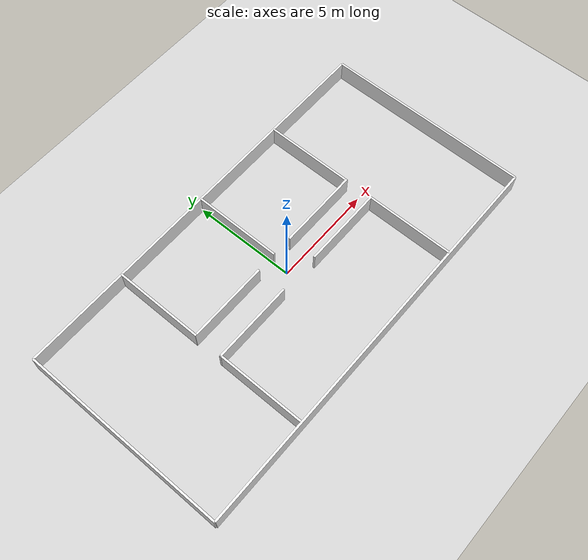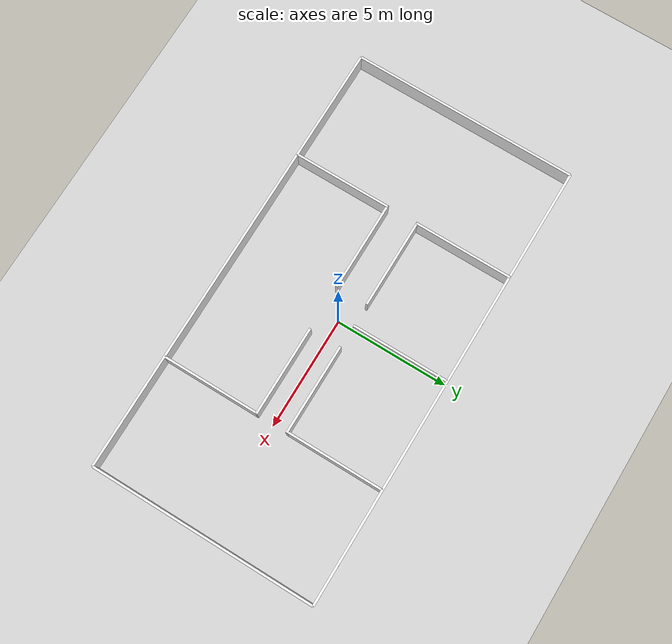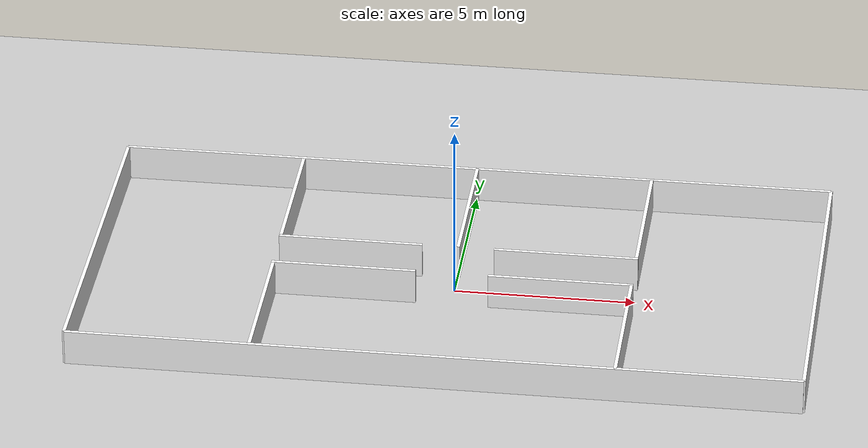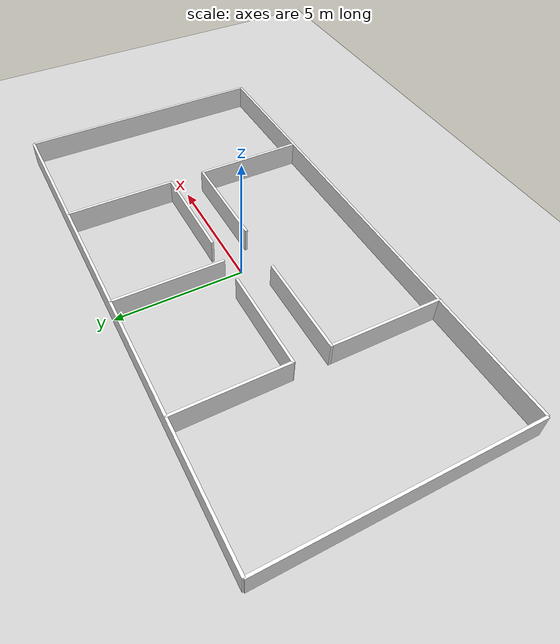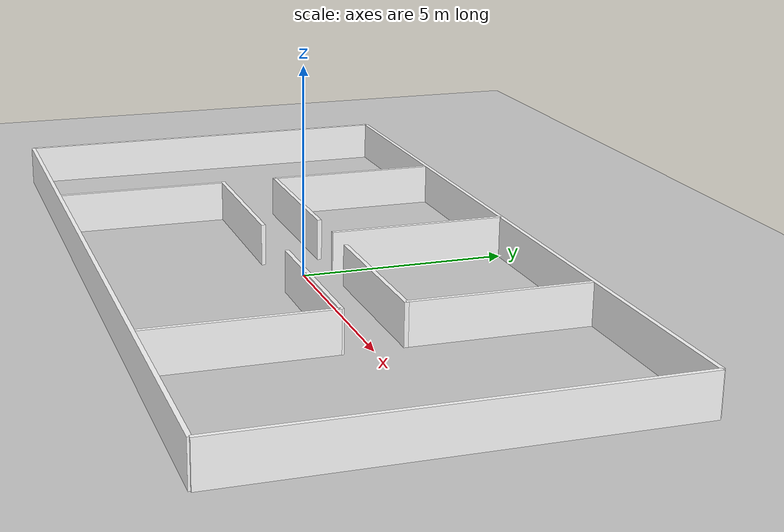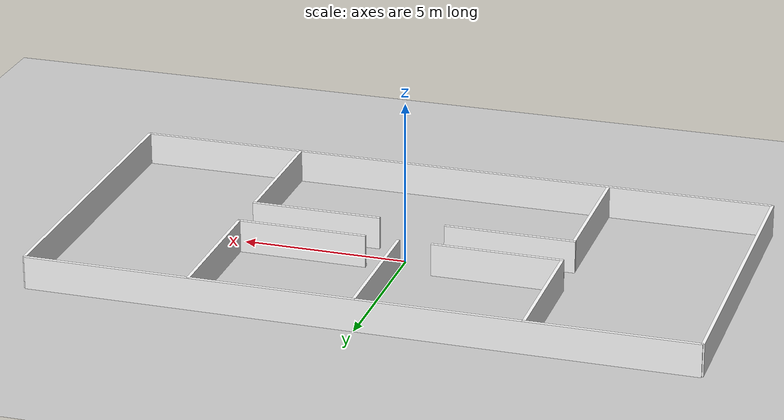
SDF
<?xml version="1.0" ?>
<!-- |    This document was autogenerated by xacro from /home/andy/dev_ws/install/patrol_control/share/patrol_control/worlds/world.xacro | -->
<!-- |    EDITING THIS FILE BY HAND IS NOT RECOMMENDED                                 | -->
<sdf version="1.8">
  <!-- title	:world.sdf			-->
  <!-- Author	:Chen Bo An 		-->
  <!-- Date 	:2026-03-15			-->
  <world name="robot_world">
    <!-- 物理環境與系統設定 -->
    <physics name="1ms" type="dart">
      <!-- 每0.001秒進行物理運算一次 -->
      <max_step_size>0.001</max_step_size>
      <!-- 與現實時間同步 -->
      <real_time_factor>1.0</real_time_factor>
    </physics>
    <!-- 物理插件 -->
    <plugin filename="gz-sim-physics-system" name="gz::sim::systems::Physics"/>
    <!-- 用戶指令 -->
    <plugin filename="gz-sim-user-commands-system" name="gz::sim::systems::UserCommands"/>
    <!-- 場景廣播 -->
    <plugin filename="gz-sim-scene-broadcaster-system" name="gz::sim::systems::SceneBroadcaster"/>
    <!-- 設定環境光即背景顏色 -->
    <scene>
      <ambient>0.6 0.6 0.6 1</ambient>
      <background>0.3 0.3 0.3 1</background>
      <shadows>false</shadows>
      <grid>true</grid>
    </scene>
    <!-- 模擬斜上方的平行光線 -->
    <light name="sun" type="directional">
      <!-- 設定光源位置(xyz rpy) -->
      <pose>0 0 10 0 0 0</pose>
      <!-- 燈光顏色(RGBA) -->
      <diffuse>1 1 1 1</diffuse>
      <!-- 光線照向 -->
      <direction>-0.5 0.1 -0.9</direction>
    </light>
    <!-- 建立地板 -->
    <model name="floor">
      <static>true</static>
      <link name="link">
        <!-- 外觀屬性 -->
        <visual name="v">
          <geometry>
            <plane>
              <normal>0 0 1</normal>
              <size>100 100</size>
            </plane>
          </geometry>
          <material>
            <ambient>0.8 0.8 0.8 1</ambient>
            <diffuse>0.8 0.8 0.8 1</diffuse>
          </material>
        </visual>
        <!-- 碰撞屬性 -->
        <collision name="c">
          <geometry>
            <plane>
              <normal>0 0 1</normal>
              <size>100 100</size>
            </plane>
          </geometry>
        </collision>
      </link>
    </model>
    <model name="front">
      <!-- 是否靜止 -->
      <static>true</static>
      <!-- 位置(xyz rpy) -->
      <pose>-10 0 0.51 0 0 1.57</pose>
      <link name="front">
        <!-- 外觀屬性 -->
        <visual name="front_visual">
          <geometry>
            <!-- 長方體 -->
            <box>
              <!-- 牆的大小(長寬高) -->
              <size>10 0.1 1</size>
            </box>
          </geometry>
          <!-- 材質設定 -->
          <material>
            <ambient>1 1 1 1</ambient>
            <diffuse>1 1 1 1</diffuse>
          </material>
        </visual>
        <!-- 碰撞屬性 -->
        <collision name="front_collision">
          <geometry>
            <box>
              <size>10 0.1 1</size>
            </box>
          </geometry>
        </collision>
      </link>
    </model>
    <model name="back">
      <!-- 是否靜止 -->
      <static>true</static>
      <!-- 位置(xyz rpy) -->
      <pose>10 0 0.51 0 0 1.57</pose>
      <link name="back">
        <!-- 外觀屬性 -->
        <visual name="back_visual">
          <geometry>
            <!-- 長方體 -->
            <box>
              <!-- 牆的大小(長寬高) -->
              <size>10 0.1 1</size>
            </box>
          </geometry>
          <!-- 材質設定 -->
          <material>
            <ambient>1 1 1 1</ambient>
            <diffuse>1 1 1 1</diffuse>
          </material>
        </visual>
        <!-- 碰撞屬性 -->
        <collision name="back_collision">
          <geometry>
            <box>
              <size>10 0.1 1</size>
            </box>
          </geometry>
        </collision>
      </link>
    </model>
    <model name="left">
      <!-- 是否靜止 -->
      <static>true</static>
      <!-- 位置(xyz rpy) -->
      <pose>0 5 0.51 0 0 0</pose>
      <link name="left">
        <!-- 外觀屬性 -->
        <visual name="left_visual">
          <geometry>
            <!-- 長方體 -->
            <box>
              <!-- 牆的大小(長寬高) -->
              <size>20 0.1 1</size>
            </box>
          </geometry>
          <!-- 材質設定 -->
          <material>
            <ambient>1 1 1 1</ambient>
            <diffuse>1 1 1 1</diffuse>
          </material>
        </visual>
        <!-- 碰撞屬性 -->
        <collision name="left_collision">
          <geometry>
            <box>
              <size>20 0.1 1</size>
            </box>
          </geometry>
        </collision>
      </link>
    </model>
    <model name="right">
      <!-- 是否靜止 -->
      <static>true</static>
      <!-- 位置(xyz rpy) -->
      <pose>0 -5 0.51 0 0 0</pose>
      <link name="right">
        <!-- 外觀屬性 -->
        <visual name="right_visual">
          <geometry>
            <!-- 長方體 -->
            <box>
              <!-- 牆的大小(長寬高) -->
              <size>20 0.1 1</size>
            </box>
          </geometry>
          <!-- 材質設定 -->
          <material>
            <ambient>1 1 1 1</ambient>
            <diffuse>1 1 1 1</diffuse>
          </material>
        </visual>
        <!-- 碰撞屬性 -->
        <collision name="right_collision">
          <geometry>
            <box>
              <size>20 0.1 1</size>
            </box>
          </geometry>
        </collision>
      </link>
    </model>
    <model name="room1_front">
      <!-- 是否靜止 -->
      <static>true</static>
      <!-- 位置(xyz rpy) -->
      <pose>-4.95 2.85 0.51 0 0 1.57</pose>
      <link name="room1_front">
        <!-- 外觀屬性 -->
        <visual name="room1_front_visual">
          <geometry>
            <!-- 長方體 -->
            <box>
              <!-- 牆的大小(長寬高) -->
              <size>4.35 0.1 1</size>
            </box>
          </geometry>
          <!-- 材質設定 -->
          <material>
            <ambient>1 1 1 1</ambient>
            <diffuse>1 1 1 1</diffuse>
          </material>
        </visual>
        <!-- 碰撞屬性 -->
        <collision name="room1_front_collision">
          <geometry>
            <box>
              <size>4.35 0.1 1</size>
            </box>
          </geometry>
        </collision>
      </link>
    </model>
    <model name="room1_back">
      <!-- 是否靜止 -->
      <static>true</static>
      <!-- 位置(xyz rpy) -->
      <pose>0 2.85 0.51 0 0 1.57</pose>
      <link name="room1_back">
        <!-- 外觀屬性 -->
        <visual name="room1_back_visual">
          <geometry>
            <!-- 長方體 -->
            <box>
              <!-- 牆的大小(長寬高) -->
              <size>4.3 0.1 1</size>
            </box>
          </geometry>
          <!-- 材質設定 -->
          <material>
            <ambient>1 1 1 1</ambient>
            <diffuse>1 1 1 1</diffuse>
          </material>
        </visual>
        <!-- 碰撞屬性 -->
        <collision name="room1_back_collision">
          <geometry>
            <box>
              <size>4.3 0.1 1</size>
            </box>
          </geometry>
        </collision>
      </link>
    </model>
    <model name="room1_right">
      <!-- 是否靜止 -->
      <static>true</static>
      <!-- 位置(xyz rpy) -->
      <pose>-3 0.7 0.51 0 0 0</pose>
      <link name="room1_right">
        <!-- 外觀屬性 -->
        <visual name="room1_right_visual">
          <geometry>
            <!-- 長方體 -->
            <box>
              <!-- 牆的大小(長寬高) -->
              <size>4 0.1 1</size>
            </box>
          </geometry>
          <!-- 材質設定 -->
          <material>
            <ambient>1 1 1 1</ambient>
            <diffuse>1 1 1 1</diffuse>
          </material>
        </visual>
        <!-- 碰撞屬性 -->
        <collision name="room1_right_collision">
          <geometry>
            <box>
              <size>4 0.1 1</size>
            </box>
          </geometry>
        </collision>
      </link>
    </model>
    <model name="room2_front">
      <!-- 是否靜止 -->
      <static>true</static>
      <!-- 位置(xyz rpy) -->
      <pose>-4.95 -2.85 0.51 0 0 1.57</pose>
      <link name="room2_front">
        <!-- 外觀屬性 -->
        <visual name="room2_front_visual">
          <geometry>
            <!-- 長方體 -->
            <box>
              <!-- 牆的大小(長寬高) -->
              <size>4.35 0.1 1</size>
            </box>
          </geometry>
          <!-- 材質設定 -->
          <material>
            <ambient>1 1 1 1</ambient>
            <diffuse>1 1 1 1</diffuse>
          </material>
        </visual>
        <!-- 碰撞屬性 -->
        <collision name="room2_front_collision">
          <geometry>
            <box>
              <size>4.35 0.1 1</size>
            </box>
          </geometry>
        </collision>
      </link>
    </model>
    <model name="room2_back">
      <!-- 是否靜止 -->
      <static>true</static>
      <!-- 位置(xyz rpy) -->
      <pose>4.95 -2.85 0.51 0 0 1.57</pose>
      <link name="room2_back">
        <!-- 外觀屬性 -->
        <visual name="room2_back_visual">
          <geometry>
            <!-- 長方體 -->
            <box>
              <!-- 牆的大小(長寬高) -->
              <size>4.3 0.1 1</size>
            </box>
          </geometry>
          <!-- 材質設定 -->
          <material>
            <ambient>1 1 1 1</ambient>
            <diffuse>1 1 1 1</diffuse>
          </material>
        </visual>
        <!-- 碰撞屬性 -->
        <collision name="room2_back_collision">
          <geometry>
            <box>
              <size>4.3 0.1 1</size>
            </box>
          </geometry>
        </collision>
      </link>
    </model>
    <model name="room2_left1">
      <!-- 是否靜止 -->
      <static>true</static>
      <!-- 位置(xyz rpy) -->
      <pose>3 -0.7 0.51 0 0 0</pose>
      <link name="room2_left1">
        <!-- 外觀屬性 -->
        <visual name="room2_left1_visual">
          <geometry>
            <!-- 長方體 -->
            <box>
              <!-- 牆的大小(長寬高) -->
              <size>4 0.1 1</size>
            </box>
          </geometry>
          <!-- 材質設定 -->
          <material>
            <ambient>1 1 1 1</ambient>
            <diffuse>1 1 1 1</diffuse>
          </material>
        </visual>
        <!-- 碰撞屬性 -->
        <collision name="room2_left1_collision">
          <geometry>
            <box>
              <size>4 0.1 1</size>
            </box>
          </geometry>
        </collision>
      </link>
    </model>
    <model name="room2_left2">
      <!-- 是否靜止 -->
      <static>true</static>
      <!-- 位置(xyz rpy) -->
      <pose>-3 -0.7 0.51 0 0 0</pose>
      <link name="room2_left2">
        <!-- 外觀屬性 -->
        <visual name="room2_left2_visual">
          <geometry>
            <!-- 長方體 -->
            <box>
              <!-- 牆的大小(長寬高) -->
              <size>4 0.1 1</size>
            </box>
          </geometry>
          <!-- 材質設定 -->
          <material>
            <ambient>1 1 1 1</ambient>
            <diffuse>1 1 1 1</diffuse>
          </material>
        </visual>
        <!-- 碰撞屬性 -->
        <collision name="room2_left2_collision">
          <geometry>
            <box>
              <size>4 0.1 1</size>
            </box>
          </geometry>
        </collision>
      </link>
    </model>
    <model name="room3_back">
      <!-- 是否靜止 -->
      <static>true</static>
      <!-- 位置(xyz rpy) -->
      <pose>4.95 2.85 0.51 0 0 1.57</pose>
      <link name="room3_back">
        <!-- 外觀屬性 -->
        <visual name="room3_back_visual">
          <geometry>
            <!-- 長方體 -->
            <box>
              <!-- 牆的大小(長寬高) -->
              <size>4.3 0.1 1</size>
            </box>
          </geometry>
          <!-- 材質設定 -->
          <material>
            <ambient>1 1 1 1</ambient>
            <diffuse>1 1 1 1</diffuse>
          </material>
        </visual>
        <!-- 碰撞屬性 -->
        <collision name="room3_back_collision">
          <geometry>
            <box>
              <size>4.3 0.1 1</size>
            </box>
          </geometry>
        </collision>
      </link>
    </model>
    <model name="room3_right">
      <!-- 是否靜止 -->
      <static>true</static>
      <!-- 位置(xyz rpy) -->
      <pose>3 0.7 0.51 0 0 0</pose>
      <link name="room3_right">
        <!-- 外觀屬性 -->
        <visual name="room3_right_visual">
          <geometry>
            <!-- 長方體 -->
            <box>
              <!-- 牆的大小(長寬高) -->
              <size>4 0.1 1</size>
            </box>
          </geometry>
          <!-- 材質設定 -->
          <material>
            <ambient>1 1 1 1</ambient>
            <diffuse>1 1 1 1</diffuse>
          </material>
        </visual>
        <!-- 碰撞屬性 -->
        <collision name="room3_right_collision">
          <geometry>
            <box>
              <size>4 0.1 1</size>
            </box>
          </geometry>
        </collision>
      </link>
    </model>
  </world>
</sdf>
